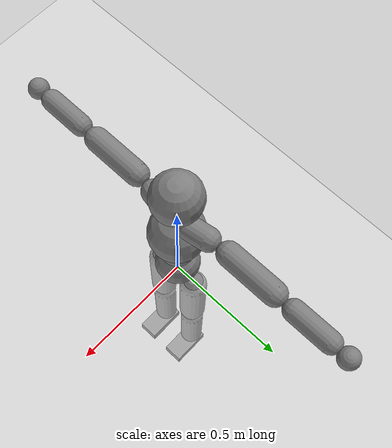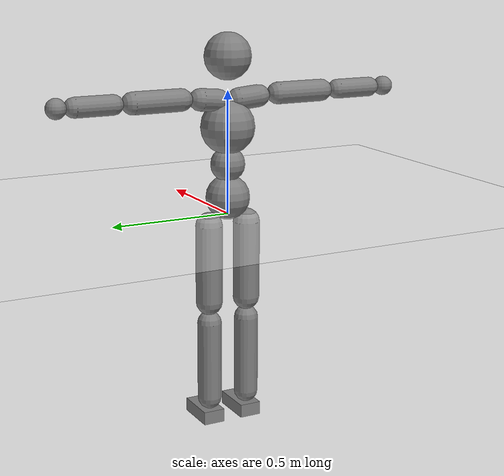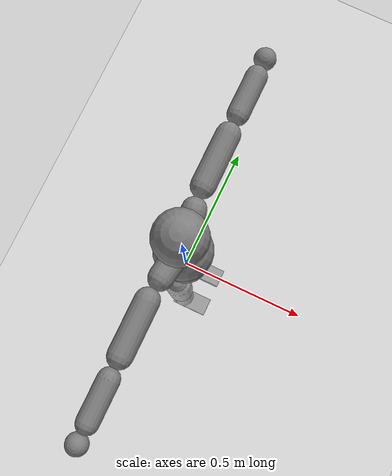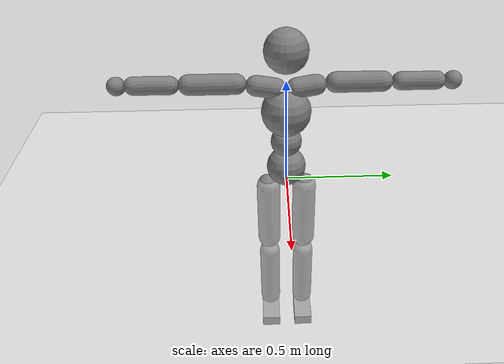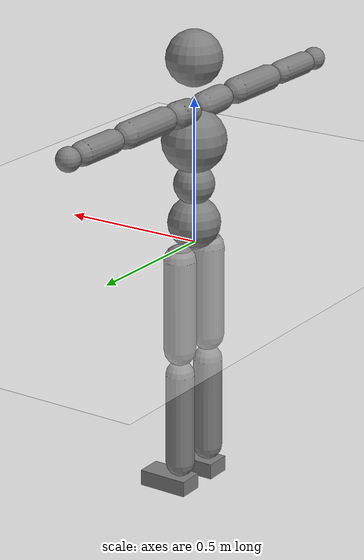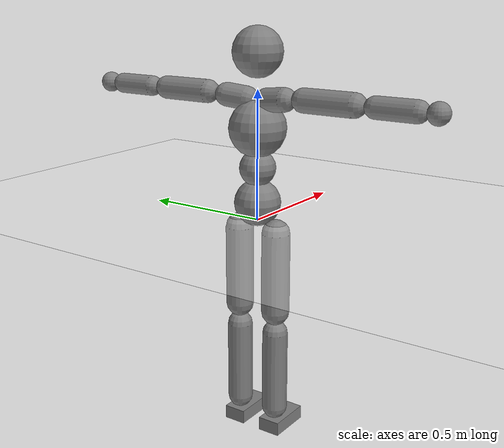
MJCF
<mujoco model="humanoid">
  <default>
    <position ctrllimited="true" forcelimited="false"/>
    <default class="body">
      <geom contype="0" conaffinity="0" condim="1" friction="1.0 0.05 0.05" solimp=".9 .99 .003" solref=".015 1"/>
      <joint limited="true" solimplimit="0 .99 .01"/>
    </default>
  </default>

  <asset>
    <texture type="skybox" builtin="gradient" rgb1="1 1 1" rgb2="1 1 1" width="800" height="800"/>
    <texture type="2d" name="groundplane" builtin="checker" mark="edge" rgb1="1 1 1" rgb2="1 1 1" markrgb="0 0 0"
      width="300" height="300"/>
    <material name="groundplane" texture="groundplane" texuniform="true" texrepeat="5 5" reflectance="0"/>
  </asset>

  <worldbody>
    <geom name="floor" pos="0 0 0" size="0 0 0.01" type="plane" material="groundplane" contype="1" conaffinity="0" priority="1"
    friction="0.6" condim="3"/>
	  <body name="pelvis" pos="0 0 0" childclass="body">
      <camera
        name="track"
        mode="trackcom"
        pos="3.903 0.082 1.001"
        xyaxes="0.003 1.000 -0.000 -0.267 0.001 0.964"
      />
      <freejoint name="root"/>
      <geom name="pelvis" type="sphere" pos="0 0 0.07" size=".09" density="2226"/>
      <geom name="upper_waist" type="sphere" pos="0 0 0.205" size="0.07" density="2226"/>

      <body name="torso" pos="0 0 0.236151">
        <joint name="abdomen_x" type="hinge" axis="1 0 0" range="-60 60" actuatorfrcrange="-200 200" damping="100" armature=".02"/>
        <joint name="abdomen_y" type="hinge" axis="0 1 0" range="-60 90" actuatorfrcrange="-200 200" damping="100" armature=".02"/>
        <joint name="abdomen_z" type="hinge" axis="0 0 1" range="-70 70" actuatorfrcrange="-200 200" damping="100" armature=".02"/>
        <geom name="torso" type="sphere" pos="0 0 0.12" size="0.11" density="1623"/>

        <geom name="right_clavicle" type="capsule" fromto="-0.0060125 -0.0457775 0.2287955 -0.016835 -0.128177 0.2376182" size=".045" density="1623"/>
        <geom name="left_clavicle" type="capsule" fromto="-0.0060125 0.0457775 0.2287955 -0.016835 0.128177 0.2376182" size=".045" density="1623"/>

        <body name="head" pos="0 0 0.223894">
          <joint name="neck_x" type="hinge" axis="1 0 0" range="-50 50" actuatorfrcrange="-50 50" damping="10" armature=".01"/>
          <joint name="neck_y" type="hinge" axis="0 1 0" range="-40 60" actuatorfrcrange="-50 50" damping="10" armature=".01"/>
          <joint name="neck_z" type="hinge" axis="0 0 1" range="-45 45" actuatorfrcrange="-50 50" damping="10" armature=".01"/>
          <geom name="head" type="sphere" pos="0 0 0.175" size="0.095" density="1081"/>
        </body>

        <body name="right_upper_arm" pos="-0.02405 -0.18311 0.24350">
          <joint name="right_shoulder_x" type="hinge" axis="1 0 0" range="-110 140" actuatorfrcrange="-100 100" damping="40" armature=".02"/>
          <joint name="right_shoulder_y" type="hinge" axis="0 1 0" range="-90 90" actuatorfrcrange="-100 100" damping="40" armature=".02"/>
          <joint name="right_shoulder_z" type="hinge" axis="0 0 1"  range="-60 160" actuatorfrcrange="-100 100" damping="40" armature=".02"/>
          <geom name="right_upper_arm" type="capsule" fromto="0 -0.23 0 0 -0.03 0" size=".045" density="982"/>

          <body name="right_lower_arm" pos="0 -0.274788 0">
            <joint name="right_elbow" type="hinge" axis="0 0 1" range="0 160" actuatorfrcrange="-70 70" damping="30" armature=".01"/>
            <geom name="right_lower_arm" type="capsule" fromto="0 -0.1875 0 0 -0.035 0" size="0.04" density="1056"/>

            <body name="right_hand" pos="0 -0.258947 0">
              <geom name="right_hand" type="sphere" size=".04" density="1865"/>
            </body>
          </body>
        </body>

        <body name="left_upper_arm" pos="-0.02405 0.18311 0.24350">
          <joint name="left_shoulder_x" type="hinge" axis="1 0 0" range="-140 110" actuatorfrcrange="-100 100" damping="40" armature=".02"/>
          <joint name="left_shoulder_y" type="hinge" axis="0 1 0" range="-90 90" actuatorfrcrange="-100 100" damping="40" armature=".02"/>
          <joint name="left_shoulder_z" type="hinge" axis="0 0 1"  range="-160 60" actuatorfrcrange="-100 100" damping="40" armature=".02"/>
          <geom name="left_upper_arm" type="capsule" fromto="0 0.03 0 0 0.23 0" size="0.045" density="982"/>

          <body name="left_lower_arm" pos="0 0.274788 0">
            <joint name="left_elbow" type="hinge" axis="0 0 1" range="-160 0" actuatorfrcrange="-70 70" damping="30" armature=".01"/>
            <geom name="left_lower_arm" type="capsule" fromto="0 0.035 0 0 0.1875 0" size="0.04" density="1056"/>

            <body name="left_hand" pos="0 0.258947 0">
              <geom name="left_hand" type="sphere" size=".04" density="1865"/>
            </body>
          </body>
        </body>
      </body>

      <body name="right_thigh" pos="0 -0.084887 0">
        <joint name="right_hip_x" type="hinge" axis="1 0 0" range="-60 30" actuatorfrcrange="-200 200" damping="50" armature=".02"/>
        <joint name="right_hip_y" type="hinge" axis="0 1 0" range="-140 60" actuatorfrcrange="-200 200" damping="50" armature=".02"/>
        <joint name="right_hip_z" type="hinge" axis="0 0 1" range="-60 60" actuatorfrcrange="-200 200" damping="50" armature=".02"/>
        <geom name="right_thigh" type="capsule" fromto="0 0 -0.04 0 0 -0.36" size="0.055" density="1269"/>

        <body name="right_shin" pos="0 0 -0.421546">
          <joint name="right_knee" type="hinge" axis="0 1 0" range="0 160" actuatorfrcrange="-150 150" damping="50" armature=".02"/>
          <geom name="right_shin" type="capsule" fromto="0 0 -0.03 0 0 -0.355"  size=".05" density="1014"/>

          <body name="right_foot" pos="0 0 -0.409870">
            <joint name="right_ankle_x" type="hinge" axis="1 0 0" range="-30 30" actuatorfrcrange="-90 90" damping="40" armature=".01"/>
            <joint name="right_ankle_y" type="hinge" axis="0 1 0" range="-55 55" actuatorfrcrange="-90 90" damping="40" armature=".01"/>
            <joint name="right_ankle_z" type="hinge" axis="0 0 1" range="-40 40" actuatorfrcrange="-90 90" damping="40" armature=".01"/>
            <geom name="right_foot" type="box" pos="0.045 0 -0.0225" size="0.0885 0.045 0.0275" density="1141" contype="0" conaffinity="1"/>
          </body>
        </body>
      </body>

      <body name="left_thigh" pos="0 0.084887 0">
        <joint name="left_hip_x" type="hinge" axis="1 0 0" range="-30 60" actuatorfrcrange="-200 200" damping="50" armature=".02"/>
        <joint name="left_hip_y" type="hinge" axis="0 1 0" range="-140 60" actuatorfrcrange="-200 200" damping="50" armature=".02"/>
        <joint name="left_hip_z" type="hinge" axis="0 0 1" range="-60 60" actuatorfrcrange="-200 200" damping="50" armature=".02"/>
        <geom name="left_thigh" type="capsule" fromto="0 0 -0.04 0 0 -0.36" size=".055" density="1269"/>

        <body name="left_shin" pos="0 0 -0.421546">
          <joint name="left_knee" type="hinge" axis="0 1 0" range="0 160" actuatorfrcrange="-150 150" damping="50" armature=".02"/>
          <geom name="left_shin" type="capsule" fromto="0 0 -0.03 0 0 -0.355"  size=".05" density="1014"/>

          <body name="left_foot" pos="0 0 -0.409870">
            <joint name="left_ankle_x" type="hinge" axis="1 0 0" range="-30 30" actuatorfrcrange="-90 90" damping="40" armature=".01"/>
            <joint name="left_ankle_y" type="hinge" axis="0 1 0" range="-55 55" actuatorfrcrange="-90 90" damping="40" armature=".01"/>
            <joint name="left_ankle_z" type="hinge" axis="0 0 1" range="-40 40" actuatorfrcrange="-90 90" damping="40" armature=".01"/>
            <geom name="left_foot" type="box" pos="0.045 0 -0.0225" size="0.0885 0.045 0.0275" density="1141" contype="0" conaffinity="1"/>
          </body>
        </body>
      </body>
    </body>
  </worldbody>

    <actuator>
    <position name='abdomen_x'        joint='abdomen_x'        kp='200'  ctrlrange='-1.0472 1.0472'/>
    <position name='abdomen_y'        joint='abdomen_y'        kp='200'  ctrlrange='-1.0472 1.5708'/>
    <position name='abdomen_z'        joint='abdomen_z'        kp='200'  ctrlrange='-1.2217 1.2217'/>
    <position name='neck_x'           joint='neck_x'           kp='50'   ctrlrange='-0.8727 0.8727'/>
    <position name='neck_y'           joint='neck_y'           kp='50'   ctrlrange='-0.6981 1.0472'/>
    <position name='neck_z'           joint='neck_z'           kp='50'   ctrlrange='-0.7854 0.7854'/>
    <position name='right_shoulder_x' joint='right_shoulder_x' kp='100'  ctrlrange='-1.9199 2.4435'/>
    <position name='right_shoulder_y' joint='right_shoulder_y' kp='100'  ctrlrange='-1.5708 1.5708'/>
    <position name='right_shoulder_z' joint='right_shoulder_z' kp='100'  ctrlrange='-1.0472 2.7925'/>
    <position name='right_elbow'      joint='right_elbow'      kp='70'   ctrlrange='0.0000 2.7925'/>
    <position name='left_shoulder_x'  joint='left_shoulder_x'  kp='100'  ctrlrange='-2.4435 1.9199'/>
    <position name='left_shoulder_y'  joint='left_shoulder_y'  kp='100'  ctrlrange='-1.5708 1.5708'/>
    <position name='left_shoulder_z'  joint='left_shoulder_z'  kp='100'  ctrlrange='-2.7925 1.0472'/>
    <position name='left_elbow'       joint='left_elbow'       kp='70'   ctrlrange='-2.7925 0.0000'/>
    <position name='right_hip_x'      joint='right_hip_x'      kp='200'  ctrlrange='-1.0472 0.5236'/>
    <position name='right_hip_z'      joint='right_hip_z'      kp='200'  ctrlrange='-1.0472 1.0472'/>
    <position name='right_hip_y'      joint='right_hip_y'      kp='200'  ctrlrange='-2.4435 1.0472'/>
    <position name='right_knee'       joint='right_knee'       kp='150'  ctrlrange='0.0000 2.7925'/>
    <position name='right_ankle_x'    joint='right_ankle_x'    kp='90'   ctrlrange='-0.5236 0.5236'/>
    <position name='right_ankle_y'    joint='right_ankle_y'    kp='90'   ctrlrange='-0.9599 0.9599'/>
    <position name='right_ankle_z'    joint='right_ankle_z'    kp='90'   ctrlrange='-0.6981 0.6981'/>
    <position name='left_hip_x'       joint='left_hip_x'       kp='200'  ctrlrange='-0.5236 1.0472'/>
    <position name='left_hip_z'       joint='left_hip_z'       kp='200'  ctrlrange='-1.0472 1.0472'/>
    <position name='left_hip_y'       joint='left_hip_y'       kp='200'  ctrlrange='-2.4435 1.0472'/>
    <position name='left_knee'        joint='left_knee'        kp='150'  ctrlrange='0.0000 2.7925'/>
    <position name='left_ankle_x'     joint='left_ankle_x'     kp='90'   ctrlrange='-0.5236 0.5236'/>
    <position name='left_ankle_y'     joint='left_ankle_y'     kp='90'   ctrlrange='-0.9599 0.9599'/>
    <position name='left_ankle_z'     joint='left_ankle_z'     kp='90'   ctrlrange='-0.6981 0.6981'/>
  </actuator>

    <keyframe>
    <key name="init"
         qpos="-0.0188268 -2.35692e-18 0.000900132 0.999864 7.65443e-18 -0.0164683 7.27796e-18 9.57071e-19 -0.0035559 -8.95543e-19 -1.59709e-18 -0.00251742 -7.08075e-20 0.0220482 -1.6965e-05 -0.000776586 -0.000288839 -0.0220482 -1.6965e-05 0.000776586 0.000288839 -1.43626e-17 0.00554705 -8.84401e-20 0.0096128 2.81164e-18 0.015973 -2.24002e-19 -1.59003e-17 0.00554705 2.63209e-18 0.0096128 1.8965e-18 0.015973 3.31051e-18"/>
  </keyframe>
</mujoco>
